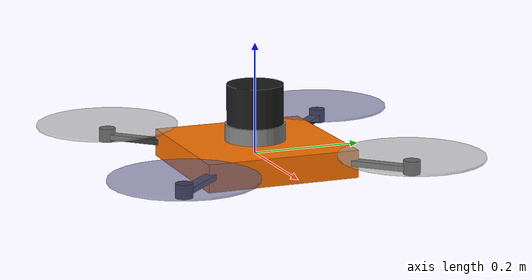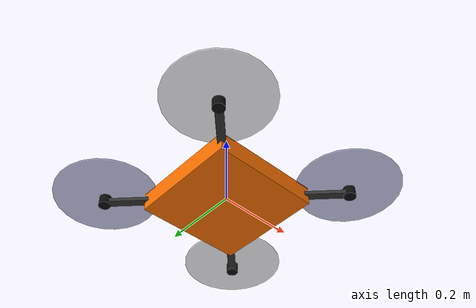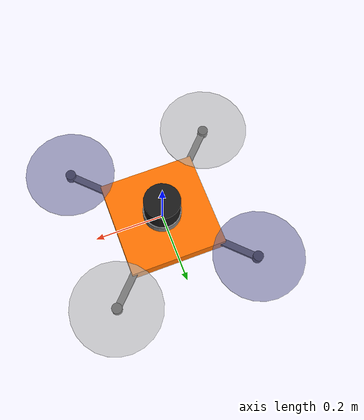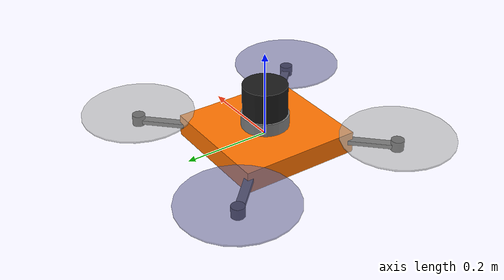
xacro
<?xml version="1.0"?>
<robot xmlns:xacro="http://www.ros.org/wiki/xacro" name="uav_lidar">

  <!-- ============================================================
       GLOBAL MATERIAL DEFINITIONS
       ============================================================ -->
  <material name="chassis_orange">
    <color rgba="1.0 0.45 0.0 1.0"/>
  </material>
  <material name="dark_grey">
    <color rgba="0.2 0.2 0.2 1.0"/>
  </material>
  <material name="black">
    <color rgba="0.05 0.05 0.05 1.0"/>
  </material>
  <material name="light_grey">
    <color rgba="0.7 0.7 0.7 0.6"/>
  </material>
  <material name="blue_grey">
    <color rgba="0.4 0.4 0.6 0.6"/>
  </material>
  <material name="velodyne_black">
    <color rgba="0.1 0.1 0.1 1.0"/>
  </material>
  <material name="mount_grey">
    <color rgba="0.5 0.5 0.5 1.0"/>
  </material>
  <material name="white">
    <color rgba="0.9 0.9 0.9 1.0"/>
  </material>

  <!-- ============================================================
       REUSABLE MACROS
       ============================================================ -->

  <!-- Null inertial for visual-only links -->
  <xacro:macro name="null_inertial">
    <inertial>
      <mass value="0.001"/>
      <inertia ixx="0.000001" ixy="0" ixz="0" iyy="0.000001" iyz="0" izz="0.000001"/>
    </inertial>
  </xacro:macro>

  <xacro:macro name="rotor_assembly" params="name pos_x pos_y arm_rpy mat_name">

    <!-- Diagonal arm link (box, oriented by arm_rpy) -->
    <link name="${name}_arm">
      <visual>
        <origin xyz="${pos_x * 0.5} ${pos_y * 0.5} 0.002" rpy="${arm_rpy}"/>
        <geometry>
          <!-- 0.30m long arm, 0.020m wide, 0.010m tall -->
          <box size="0.30 0.020 0.010"/>
        </geometry>
        <material name="dark_grey"/>
      </visual>
      <xacro:null_inertial/>
    </link>
    <joint name="${name}_arm_joint" type="fixed">
      <parent link="base_link"/>
      <child link="${name}_arm"/>
      <origin xyz="0 0 0" rpy="0 0 0"/>
    </joint>

    <!-- Motor housing cylinder -->
    <link name="${name}_motor">
      <visual>
        <origin xyz="0 0 0" rpy="0 0 0"/>
        <geometry>
          <cylinder radius="0.015" length="0.025"/>
        </geometry>
        <material name="black"/>
      </visual>
      <collision>
        <origin xyz="0 0 0" rpy="0 0 0"/>
        <geometry>
          <cylinder radius="0.015" length="0.025"/>
        </geometry>
      </collision>
      <xacro:null_inertial/>
    </link>
    <joint name="${name}_motor_joint" type="fixed">
      <parent link="base_link"/>
      <child link="${name}_motor"/>
      <origin xyz="${pos_x} ${pos_y} 0.005" rpy="0 0 0"/>
    </joint>

    <!-- Spinning rotor disk (continuous joint for animation) -->
    <link name="${name}_rotor">
      <visual>
        <origin xyz="0 0 0.004" rpy="0 0 0"/>
        <geometry>
          <cylinder radius="0.13" length="0.004"/>
        </geometry>
        <material name="${mat_name}"/>
      </visual>
      <xacro:null_inertial/>
    </link>
    <joint name="${name}_rotor_joint" type="continuous">
      <parent link="${name}_motor"/>
      <child link="${name}_rotor"/>
      <origin xyz="0 0 0.015" rpy="0 0 0"/>
      <axis xyz="0 0 1"/>
    </joint>

  </xacro:macro>

  <link name="base_link">
    <visual>
      <origin xyz="0 0 0" rpy="0 0 0"/>
      <geometry>
        <box size="0.28 0.28 0.050"/>
      </geometry>
      <material name="chassis_orange"/>
    </visual>
    <collision>
      <origin xyz="0 0 0" rpy="0 0 0"/>
      <geometry>
        <box size="0.28 0.28 0.050"/>
      </geometry>
    </collision>
    <inertial>
      <!-- Total drone mass ~1.4 kg, including battery and electronics -->
      <mass value="1.4"/>
      <!-- Thin disk inertia approximation for the chassis -->
      <inertia ixx="0.015" ixy="0.0" ixz="0.0"
               iyy="0.015" iyz="0.0"
               izz="0.028"/>
    </inertial>
  </link>

  <xacro:rotor_assembly name="rotor_fr" pos_x=" 0.21" pos_y="-0.21"
                         arm_rpy="0 0 -0.785398" mat_name="blue_grey"/>
  <xacro:rotor_assembly name="rotor_fl" pos_x=" 0.21" pos_y=" 0.21"
                         arm_rpy="0 0  0.785398" mat_name="light_grey"/>
  <xacro:rotor_assembly name="rotor_rl" pos_x="-0.21" pos_y=" 0.21"
                         arm_rpy="0 0 -0.785398" mat_name="blue_grey"/>
  <xacro:rotor_assembly name="rotor_rr" pos_x="-0.21" pos_y="-0.21"
                         arm_rpy="0 0  0.785398" mat_name="light_grey"/>

  <link name="lidar_mount">
    <visual>
      <origin xyz="0 0 0" rpy="0 0 0"/>
      <geometry>
        <cylinder radius="0.055" length="0.030"/>
      </geometry>
      <material name="mount_grey"/>
    </visual>
    <collision>
      <origin xyz="0 0 0" rpy="0 0 0"/>
      <geometry>
        <cylinder radius="0.055" length="0.030"/>
      </geometry>
    </collision>
    <xacro:null_inertial/>
  </link>
  <joint name="lidar_mount_joint" type="fixed">
    <parent link="base_link"/>
    <child link="lidar_mount"/>
    <!-- 25mm half-chassis + 15mm half-pedestal = 40mm above centre -->
    <origin xyz="0 0 0.040" rpy="0 0 0"/>
  </joint>

  <link name="velodyne">
    <visual>
      <origin xyz="0 0 0" rpy="0 0 0"/>
      <geometry>
        <cylinder radius="0.0515" length="0.0717"/>
      </geometry>
      <material name="velodyne_black"/>
    </visual>
    <collision>
      <origin xyz="0 0 0" rpy="0 0 0"/>
      <geometry>
        <cylinder radius="0.0515" length="0.0717"/>
      </geometry>
    </collision>
    <inertial>
      <!-- VLP-16 mass: ~830 g -->
      <mass value="0.83"/>
      <inertia ixx="0.0005" ixy="0.0" ixz="0.0"
               iyy="0.0005" iyz="0.0"
               izz="0.0009"/>
    </inertial>
  </link>
  <joint name="velodyne_joint" type="fixed">
    <parent link="lidar_mount"/>
    <child link="velodyne"/>
    <!-- 15mm mount half + 36mm VLP-16 half = 51mm above mount centre -->
    <origin xyz="0 0 0.051" rpy="0 0 0"/>
  </joint>

  <!-- ============================================================
       IMU LINK (co-located with body centre of gravity)
       ============================================================ -->
  <link name="imu_link">
    <xacro:null_inertial/>
  </link>
  <joint name="imu_joint" type="fixed">
    <parent link="base_link"/>
    <child link="imu_link"/>
    <origin xyz="0 0 0" rpy="0 0 0"/>
  </joint>

  <!-- ============================================================
       GAZEBO SIMULATION PROPERTIES
       ============================================================ -->

  <!-- Body: disable gravity so drone hovers at commanded height.
       Self-collide disabled to prevent rotor-body interference. -->
  <gazebo reference="base_link">
    <material>Gazebo/Orange</material>
    <gravity>false</gravity>
    <self_collide>false</self_collide>
    <mu1>0.0</mu1>
    <mu2>0.0</mu2>
  </gazebo>

  <gazebo reference="velodyne">
    <material>Gazebo/Black</material>
  </gazebo>

  <gazebo reference="lidar_mount">
    <material>Gazebo/Grey</material>
  </gazebo>

  <gazebo reference="velodyne">
    <sensor type="ray" name="velodyne_sensor">
      <pose>0 0 0 0 0 0</pose>
      <visualize>false</visualize>
      <update_rate>10</update_rate>
      <ray>
        <scan>
          <!-- 360° horizontal coverage at 0.2° resolution -->
          <horizontal>
            <samples>1800</samples>
            <resolution>1</resolution>
            <min_angle>-3.14159265</min_angle>
            <max_angle> 3.14159265</max_angle>
          </horizontal>
          <!-- 16-channel vertical array spanning ±15° -->
          <vertical>
            <samples>16</samples>
            <resolution>1</resolution>
            <min_angle>-0.26179939</min_angle>  <!-- -15 degrees -->
            <max_angle> 0.26179939</max_angle>  <!-- +15 degrees -->
          </vertical>
        </scan>
        <range>
          <min>0.1</min>
          <max>100.0</max>
          <resolution>0.001</resolution>
        </range>
        <noise>
          <type>gaussian</type>
          <mean>0.0</mean>
          <stddev>0.008</stddev>
        </noise>
      </ray>
      <!-- Plugin: converts ray sensor output to PointCloud2 message -->
      <plugin name="gazebo_ros_velodyne_controller"
              filename="libgazebo_ros_velodyne_laser.so">
        <topicName>/velodyne_points</topicName>
        <frameName>velodyne</frameName>
        <organize_cloud>false</organize_cloud>
        <min_range>0.2</min_range>
        <max_range>130.0</max_range>
        <gaussianNoise>0.008</gaussianNoise>
      </plugin>
    </sensor>
  </gazebo>

  <gazebo reference="imu_link">
    <sensor name="imu_sensor" type="imu">
      <always_on>true</always_on>
      <update_rate>100</update_rate>
      <visualize>false</visualize>
      <plugin filename="libgazebo_ros_imu_sensor.so" name="imu_plugin">
        <topicName>/imu/data</topicName>
        <bodyName>imu_link</bodyName>
        <updateRateHZ>100.0</updateRateHZ>
        <gaussianNoise>0.0</gaussianNoise>
        <xyzOffset>0 0 0</xyzOffset>
        <rpyOffset>0 0 0</rpyOffset>
        <frameName>imu_link</frameName>
        <initialOrientationAsReference>false</initialOrientationAsReference>
      </plugin>
      <pose>0 0 0 0 0 0</pose>
    </sensor>
  </gazebo>

  <gazebo>
    <plugin name="p3d_base_controller" filename="libgazebo_ros_p3d.so">
      <alwaysOn>true</alwaysOn>
      <updateRate>50.0</updateRate>
      <bodyName>base_link</bodyName>
      <topicName>/ground_truth/odom</topicName>
      <gaussianNoise>0.0</gaussianNoise>
      <frameName>world</frameName>
      <xyzOffsets>0 0 0</xyzOffsets>
      <rpyOffsets>0 0 0</rpyOffsets>
    </plugin>
  </gazebo>

</robot>
